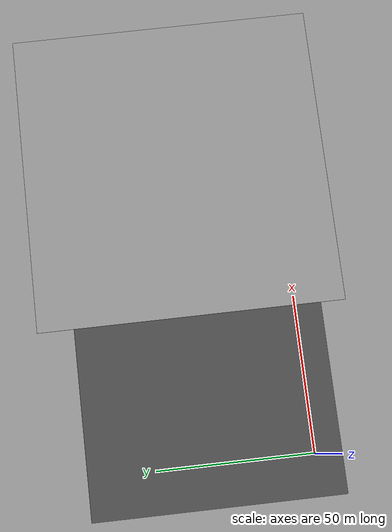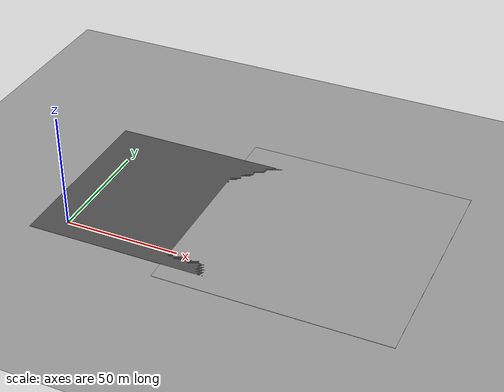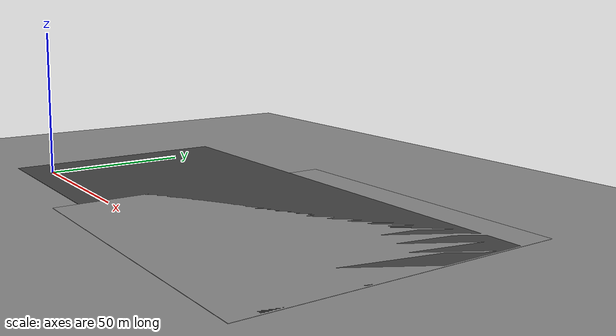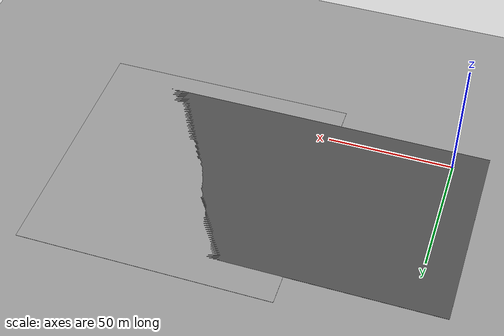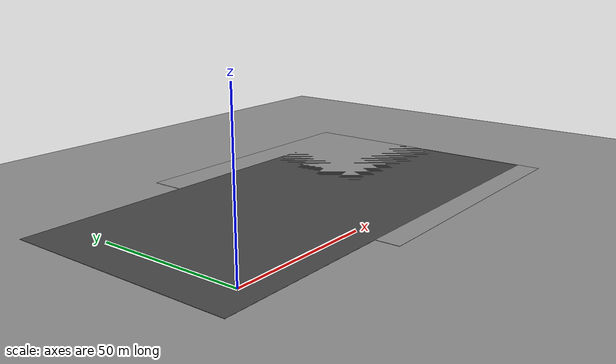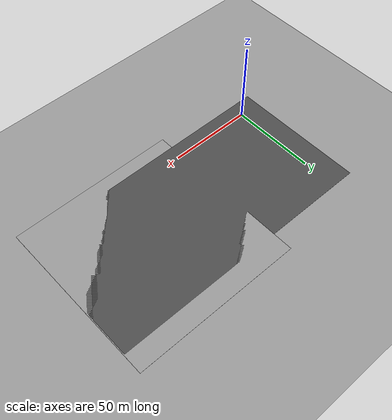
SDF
<?xml version='1.0'?>
<sdf version='1.6'>
  <model name='evgp'>
    <link name='link'>
      <self_collide>0</self_collide>
      <enable_wind>0</enable_wind>
      <kinematic>0</kinematic>
      <pose frame=''>66.7573 31.4868 0 0 -0 0</pose>
      <gravity>1</gravity>
      <inertial>
        <mass>1</mass>
        <pose frame=''>0 0 0 0 -0 0</pose>
        <inertia>
          <ixx>1</ixx>
          <ixy>0</ixy>
          <ixz>0</ixz>
          <iyy>1</iyy>
          <iyz>0</iyz>
          <izz>1</izz>
        </inertia>
      </inertial>
      <visual name='visual'>
        <cast_shadows>0</cast_shadows>
        <geometry>
          <box>
            <size>160 80 0.1</size>
          </box>
        </geometry>
        <material>
          <script>
            <uri>model://asphalt_plane/materials/scripts</uri>
            <uri>model://asphalt_plane/materials/textures</uri>
            <name>vrc/asphalt</name>
          </script>
          <shader type='vertex'>
            <normal_map>__default__</normal_map>
          </shader>
          <ambient>0.5 0.5 0.5 1</ambient>
          <diffuse>0.5 0.5 0.5 1</diffuse>
          <specular>0.2 0.2 0.2 1</specular>
          <emissive>0 0 0 1</emissive>
        </material>
        <pose frame=''>0 0 0 0 -0 0</pose>
        <transparency>0</transparency>
      </visual>
      <collision name='collision'>
        <laser_retro>0</laser_retro>
        <max_contacts>10</max_contacts>
        <pose frame=''>0 0 0 0 -0 0</pose>
        <geometry>
          <box>
            <size>160 80 0.1</size>
          </box>
        </geometry>
        <surface>
          <friction>
            <ode>
              <mu>1</mu>
              <mu2>1</mu2>
              <fdir1>0 0 0</fdir1>
              <slip1>0</slip1>
              <slip2>0</slip2>
            </ode>
            <torsional>
              <coefficient>1</coefficient>
              <patch_radius>0</patch_radius>
              <surface_radius>0</surface_radius>
              <use_patch_radius>1</use_patch_radius>
              <ode>
                <slip>0</slip>
              </ode>
            </torsional>
          </friction>
          <bounce>
            <restitution_coefficient>0</restitution_coefficient>
            <threshold>1e+06</threshold>
          </bounce>
          <contact>
            <collide_without_contact>0</collide_without_contact>
            <collide_without_contact_bitmask>1</collide_without_contact_bitmask>
            <collide_bitmask>1</collide_bitmask>
            <ode>
              <soft_cfm>0</soft_cfm>
              <soft_erp>0.2</soft_erp>
              <kp>1e+13</kp>
              <kd>1</kd>
              <max_vel>0.01</max_vel>
              <min_depth>0</min_depth>
            </ode>
            <bullet>
              <split_impulse>1</split_impulse>
              <split_impulse_penetration_threshold>-0.01</split_impulse_penetration_threshold>
              <soft_cfm>0</soft_cfm>
              <soft_erp>0.2</soft_erp>
              <kp>1e+13</kp>
              <kd>1</kd>
            </bullet>
          </contact>
        </surface>
      </collision>
    </link>
    <model name='ground_plane'>
      <static>1</static>
      <link name='link'>
        <collision name='collision'>
          <geometry>
            <plane>
              <normal>0 0 1</normal>
              <size>100 100</size>
            </plane>
          </geometry>
          <surface>
            <contact>
              <collide_bitmask>65535</collide_bitmask>
            </contact>
            <friction>
              <ode>
                <mu>100</mu>
                <mu2>50</mu2>
              </ode>
            </friction>
          </surface>
        </collision>
        <visual name='visual'>
          <cast_shadows>0</cast_shadows>
          <geometry>
            <plane>
              <normal>0 0 1</normal>
              <size>100 100</size>
            </plane>
          </geometry>
          <material>
            <script>
              <uri>file://media/materials/scripts/gazebo.material</uri>
              <name>Gazebo/Grey</name>
            </script>
          </material>
        </visual>
      </link>
      <pose frame=''>30.5931 31.8148 0 0 -0 0</pose>
    </model>
    <model name='ground_plane_0'>
      <static>1</static>
      <link name='link'>
        <collision name='collision'>
          <geometry>
            <plane>
              <normal>0 0 1</normal>
              <size>100 100</size>
            </plane>
          </geometry>
          <surface>
            <contact>
              <collide_bitmask>65535</collide_bitmask>
            </contact>
            <friction>
              <ode>
                <mu>100</mu>
                <mu2>50</mu2>
              </ode>
            </friction>
          </surface>
        </collision>
        <visual name='visual'>
          <cast_shadows>0</cast_shadows>
          <geometry>
            <plane>
              <normal>0 0 1</normal>
              <size>100 100</size>
            </plane>
          </geometry>
          <material>
            <script>
              <uri>file://media/materials/scripts/gazebo.material</uri>
              <name>Gazebo/Grey</name>
            </script>
          </material>
        </visual>
      </link>
      <pose frame=''>97.3028 33.3974 0 0 -0 0</pose>
    </model>
    <static>1</static>
    <allow_auto_disable>1</allow_auto_disable>
  </model>
</sdf>
